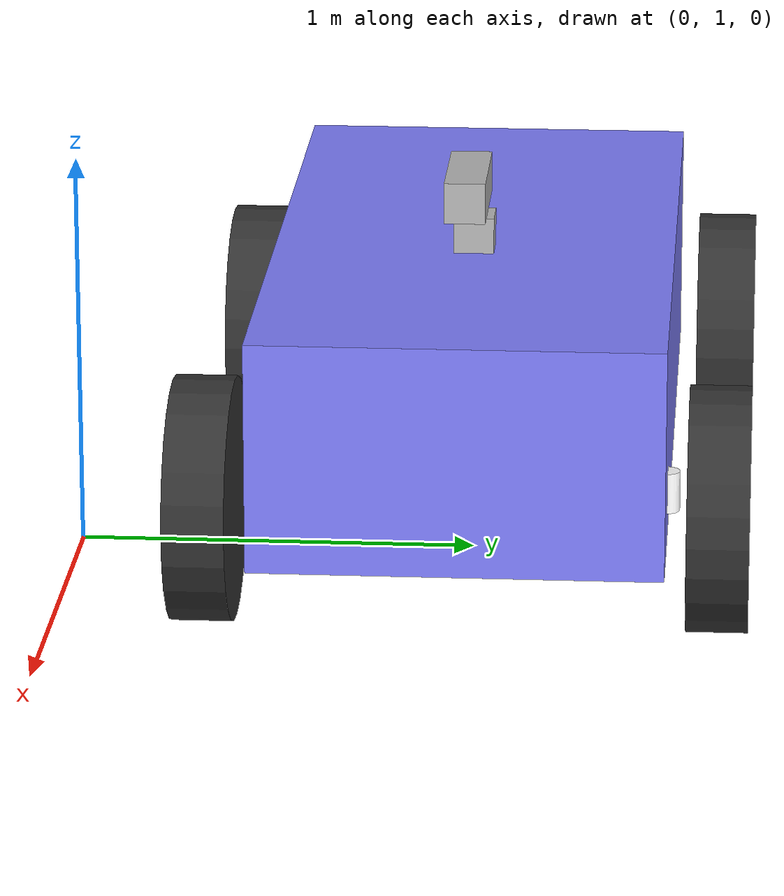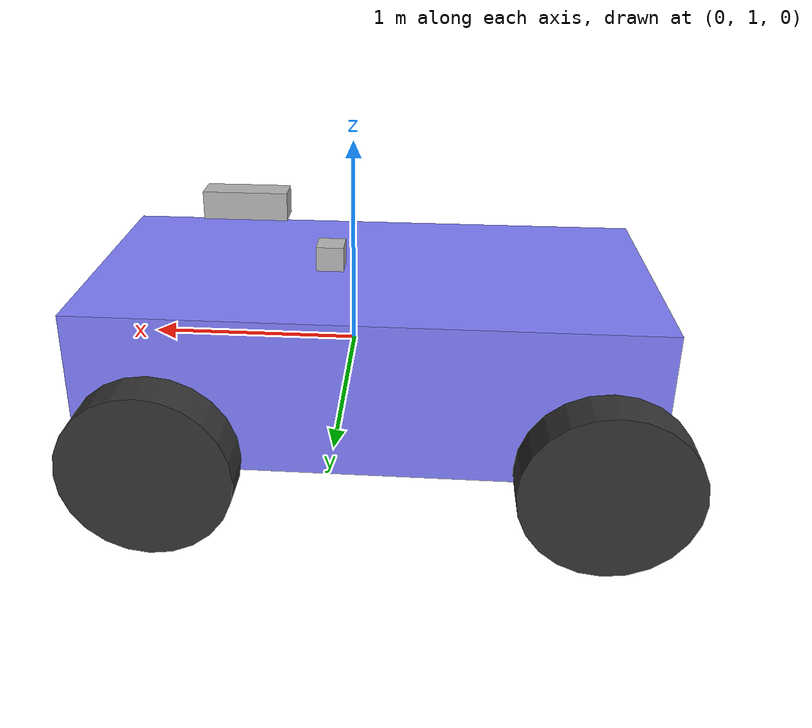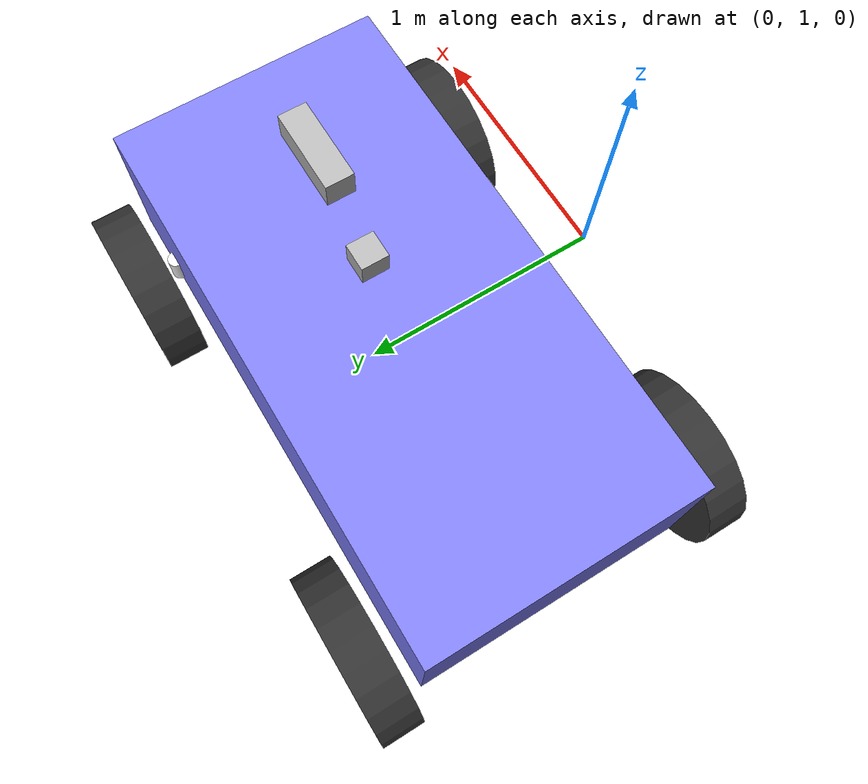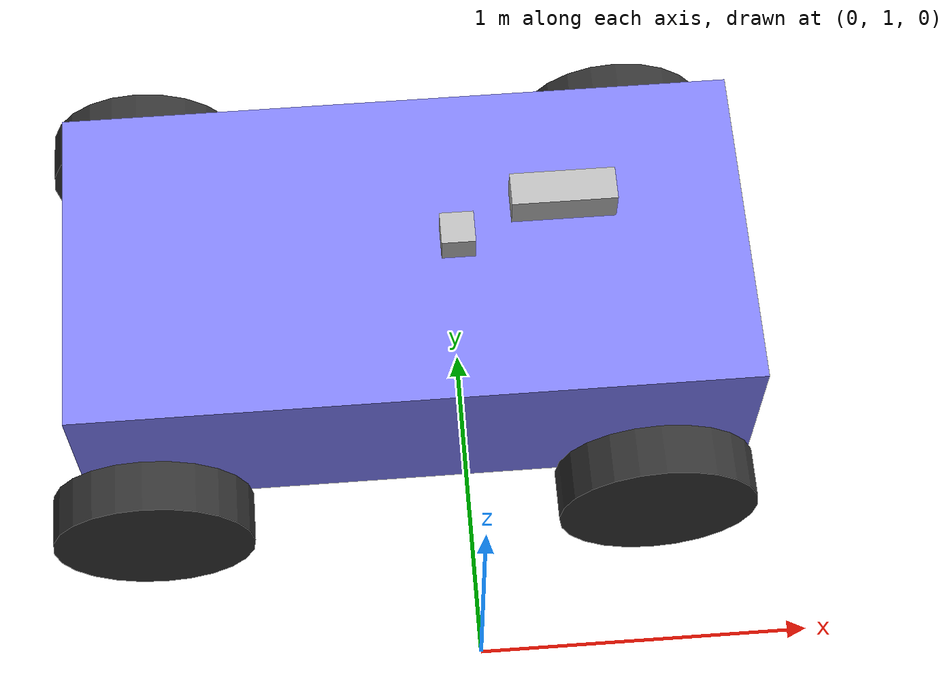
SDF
<?xml version="1.0"?>
<sdf version="1.10">
	<model name='racecarx'>
		<pose>0 2 0.33 0 0 0</pose>
		<static>false</static>
		<self_collide>false</self_collide>
		<plugin filename="libRoadGen.so" name="RoadGen"></plugin>
		<link name='chassis'>
			<pose>-0.15142700000000001 0 0.17499999999999999 0 0 0</pose>
			<inertial>
			<mass>1.14395</mass>
			<inertia>
				<ixx>0.126164</ixx>
				<ixy>0</ixy>
				<ixz>0</ixz>
				<iyy>0.41651899999999997</iyy>
				<iyz>0</iyz>
				<izz>0.481014</izz>
			</inertia>
			<pose>0 0 0 0 0 0</pose>
			</inertial>
			<visual name='visual'>
			<geometry>
				<box>
				<size>2.0114200000000002 1 0.56872599999999995</size>
				</box>
			</geometry>
			<material>
				<ambient>0.5 0.5 1 1</ambient>
				<diffuse>0.5 0.5 1 1</diffuse>
				<specular>0 0 1 1</specular>
			</material>
			</visual>
			<collision name='collision'>
			<geometry>
				<box>
				<size>2.0114200000000002 1 0.56872599999999995</size>
				</box>
			</geometry>
			<surface>
				<friction>
				<ode/>
				</friction>
				<bounce/>
				<contact/>
			</surface>
			</collision>
			<enable_wind>false</enable_wind>
		</link>
		<link name='front_left_wheel'>
			<pose>0.55428299994665509 0.6250290000000005 -0.025000000000000022 -1.5706999999999995 -9.145556648555931e-15 4.2666024538867574e-10</pose>
			<inertial>
			<mass>2</mass>
			<inertia>
				<ixx>0.14583299999999999</ixx>
				<ixy>0</ixy>
				<ixz>0</ixz>
				<iyy>0.14583299999999999</iyy>
				<iyz>0</iyz>
				<izz>0.125</izz>
			</inertia>
			<pose>0 0 0 0 0 0</pose>
			</inertial>
			<visual name='visual'>
			<geometry>
				<cylinder>
				<length>0.14999999999999999</length>
				<radius>0.29999999999999999</radius>
				</cylinder>
			</geometry>
			<material>
				<ambient>0.200000003 0.200000003 0.200000003 1</ambient>
				<diffuse>0.200000003 0.200000003 0.200000003 1</diffuse>
				<specular>0.200000003 0.200000003 0.200000003 1</specular>
			</material>
			</visual>
			<collision name='collision'>
			<geometry>
				<cylinder>
				<length>0.14999999999999999</length>
				<radius>0.29999999999999999</radius>
				</cylinder>
			</geometry>
			<surface>
				<friction>
				<ode>
					<mu>0.5</mu>
					<mu2>1</mu2>
					<fdir1>0 0 1</fdir1>
				</ode>
				<bullet>
					<friction>0.5</friction>
					<friction2>1</friction2>
					<rolling_friction>0.10000000000000001</rolling_friction>
				</bullet>
				</friction>
				<bounce/>
				<contact/>
			</surface>
			</collision>
			<enable_wind>false</enable_wind>
		</link>
		<link name='rear_left_wheel'>
			<pose>-0.95713800000000027 0.62502900000000006 -0.025000000000000022 -1.5706999999999995 -2.9522270427279027e-15 -2.8437852876896552e-19</pose>
			<inertial>
			<mass>2</mass>
			<inertia>
				<ixx>0.14583299999999999</ixx>
				<ixy>0</ixy>
				<ixz>0</ixz>
				<iyy>0.14583299999999999</iyy>
				<iyz>0</iyz>
				<izz>0.125</izz>
			</inertia>
			<pose>0 0 0 0 0 0</pose>
			</inertial>
			<visual name='visual'>
			<geometry>
				<cylinder>
				<length>0.14999999999999999</length>
				<radius>0.29999999999999999</radius>
				</cylinder>
			</geometry>
			<material>
				<ambient>0.200000003 0.200000003 0.200000003 1</ambient>
				<diffuse>0.200000003 0.200000003 0.200000003 1</diffuse>
				<specular>0.200000003 0.200000003 0.200000003 1</specular>
			</material>
			</visual>
			<collision name='collision'>
			<geometry>
				<cylinder>
				<length>0.14999999999999999</length>
				<radius>0.29999999999999999</radius>
				</cylinder>
			</geometry>
			<surface>
				<friction>
				<ode>
					<mu>0.5</mu>
					<mu2>1</mu2>
					<fdir1>0 0 1</fdir1>
				</ode>
				<bullet>
					<friction>0.5</friction>
					<friction2>1</friction2>
					<rolling_friction>0.5</rolling_friction>
				</bullet>
				</friction>
				<bounce/>
				<contact/>
			</surface>
			</collision>
			<enable_wind>false</enable_wind>
		</link>
		<link name='front_right_wheel'>
			<pose>0.55428200005334449 -0.62502900000000028 -0.024999999999999967 -1.5706999999999995 1.6772747307446438e-14 4.2665521801114974e-10</pose>
			<inertial>
			<mass>2</mass>
			<inertia>
				<ixx>0.14583299999999999</ixx>
				<ixy>0</ixy>
				<ixz>0</ixz>
				<iyy>0.14583299999999999</iyy>
				<iyz>0</iyz>
				<izz>0.125</izz>
			</inertia>
			<pose>0 0 0 0 0 0</pose>
			</inertial>
			<visual name='visual'>
			<geometry>
				<cylinder>
				<length>0.14999999999999999</length>
				<radius>0.29999999999999999</radius>
				</cylinder>
			</geometry>
			<material>
				<ambient>0.200000003 0.200000003 0.200000003 1</ambient>
				<diffuse>0.200000003 0.200000003 0.200000003 1</diffuse>
				<specular>0.200000003 0.200000003 0.200000003 1</specular>
			</material>
			</visual>
			<collision name='collision'>
			<geometry>
				<cylinder>
				<length>0.14999999999999999</length>
				<radius>0.29999999999999999</radius>
				</cylinder>
			</geometry>
			<surface>
				<friction>
				<ode>
					<mu>0.5</mu>
					<mu2>1</mu2>
					<fdir1>0 0 1</fdir1>
				</ode>
				<bullet>
					<friction>0.5</friction>
					<friction2>1</friction2>
					<rolling_friction>0.10000000000000001</rolling_friction>
				</bullet>
				</friction>
				<bounce/>
				<contact/>
			</surface>
			</collision>
			<enable_wind>false</enable_wind>
		</link>
		<link name='rear_right_wheel'>
			<pose>-0.95713800000000004 -0.62502899999999983 -0.025000000000000022 -1.5706999999999995 -4.6792353216849343e-15 -4.507357451652125e-19</pose>
			<inertial>
			<mass>2</mass>
			<inertia>
				<ixx>0.14583299999999999</ixx>
				<ixy>0</ixy>
				<ixz>0</ixz>
				<iyy>0.14583299999999999</iyy>
				<iyz>0</iyz>
				<izz>0.125</izz>
			</inertia>
			<pose>0 0 0 0 0 0</pose>
			</inertial>
			<visual name='visual'>
			<geometry>
				<cylinder>
				<length>0.14999999999999999</length>
				<radius>0.29999999999999999</radius>
				</cylinder>
			</geometry>
			<material>
				<ambient>0.200000003 0.200000003 0.200000003 1</ambient>
				<diffuse>0.200000003 0.200000003 0.200000003 1</diffuse>
				<specular>0.200000003 0.200000003 0.200000003 1</specular>
			</material>
			</visual>
			<collision name='collision'>
			<geometry>
				<cylinder>
				<length>0.14999999999999999</length>
				<radius>0.29999999999999999</radius>
				</cylinder>
			</geometry>
			<surface>
				<friction>
				<ode>
					<mu>0.5</mu>
					<mu2>1</mu2>
					<fdir1>0 0 1</fdir1>
				</ode>
				<bullet>
					<friction>0.5</friction>
					<friction2>1</friction2>
					<rolling_friction>0.5</rolling_friction>
				</bullet>
				</friction>
				<bounce/>
				<contact/>
			</surface>
			</collision>
			<enable_wind>false</enable_wind>
		</link>
		<link name='front_left_wheel_steering_link'>
			<pose>0.55428300000000008 0.5 0.019999999999999962 4.2777962009110771e-26 4.852013700537918e-26 4.2666024626963793e-10</pose>
			<inertial>
			<mass>0.5</mass>
			<inertia>
				<ixx>0.015299999999999999</ixx>
				<iyy>0.025000000000000001</iyy>
				<izz>0.015299999999999999</izz>
				<ixy>0</ixy>
				<ixz>0</ixz>
				<iyz>0</iyz>
			</inertia>
			<pose>0 0 0 0 0 0</pose>
			</inertial>
			<visual name='steering_link_visual'>
			<pose>0 0 0 0 0 0</pose>
			<geometry>
				<cylinder>
				<length>0.10000000000000001</length>
				<radius>0.029999999999999999</radius>
				</cylinder>
			</geometry>
			<material>
				<ambient>1 1 1 1</ambient>
				<diffuse>1 1 1 1</diffuse>
			</material>
			</visual>
			<enable_wind>false</enable_wind>
		</link>
		<link name='front_right_wheel_steering_link'>
			<pose>0.55428300000000008 -0.5 0.019999999999999962 -4.5858317481205403e-27 -5.4877439555714035e-26 4.2665521639548491e-10</pose>
			<inertial>
			<mass>0.5</mass>
			<inertia>
				<ixx>0.015299999999999999</ixx>
				<iyy>0.025000000000000001</iyy>
				<izz>0.015299999999999999</izz>
				<ixy>0</ixy>
				<ixz>0</ixz>
				<iyz>0</iyz>
			</inertia>
			<pose>0 0 0 0 0 0</pose>
			</inertial>
			<visual name='steering_link_visual'>
			<pose>0 0 0 0 0 0</pose>
			<geometry>
				<cylinder>
				<length>0.10000000000000001</length>
				<radius>0.029999999999999999</radius>
				</cylinder>
			</geometry>
			<material>
				<ambient>1 1 1 1</ambient>
				<diffuse>1 1 1 1</diffuse>
			</material>
			</visual>
			<enable_wind>false</enable_wind>
		</link>
		<joint name='front_left_wheel_steering_joint' type='revolute'>
			<child>front_left_wheel_steering_link</child>
			<parent>chassis</parent>
			<axis>
			<xyz>0 0 1</xyz>
			<limit>
				<lower>-0.59999999999999998</lower>
				<upper>0.59999999999999998</upper>
				<effort>25</effort>
				<velocity>1</velocity>
				<stiffness>100000000</stiffness>
				<dissipation>1</dissipation>
			</limit>
			<dynamics>
				<spring_reference>0</spring_reference>
				<spring_stiffness>0</spring_stiffness>
				<damping>0</damping>
				<friction>0</friction>
			</dynamics>
			</axis>
			<pose>0 0 0 0 0 0</pose>
		</joint>
		<joint name='front_right_wheel_steering_joint' type='revolute'>
			<parent>chassis</parent>
			<child>front_right_wheel_steering_link</child>
			<axis>
			<xyz>0 0 1</xyz>
			<limit>
				<lower>-0.59999999999999998</lower>
				<upper>0.59999999999999998</upper>
				<effort>25</effort>
				<velocity>1</velocity>
				<stiffness>100000000</stiffness>
				<dissipation>1</dissipation>
			</limit>
			<dynamics>
				<spring_reference>0</spring_reference>
				<spring_stiffness>0</spring_stiffness>
				<damping>0</damping>
				<friction>0</friction>
			</dynamics>
			</axis>
			<pose>0 0 0 0 0 0</pose>
		</joint>
		<joint name='front_left_wheel_joint' type='revolute'>
			<parent>front_left_wheel_steering_link</parent>
			<child>front_left_wheel</child>
			<axis>
			<xyz>0 0 1</xyz>
			<limit>
				<lower>-1.7976900000000001e+308</lower>
				<upper>1.7976900000000001e+308</upper>
				<effort>inf</effort>
				<velocity>inf</velocity>
				<stiffness>100000000</stiffness>
				<dissipation>1</dissipation>
			</limit>
			<dynamics>
				<spring_reference>0</spring_reference>
				<spring_stiffness>0</spring_stiffness>
				<damping>0</damping>
				<friction>0</friction>
			</dynamics>
			</axis>
			<pose>0 0 1.11022e-16 0 0 0</pose>
		</joint>
		<joint name='front_right_wheel_joint' type='revolute'>
			<parent>front_right_wheel_steering_link</parent>
			<child>front_right_wheel</child>
			<axis>
			<xyz>0 0 1</xyz>
			<limit>
				<lower>-1.7976900000000001e+308</lower>
				<upper>1.7976900000000001e+308</upper>
				<effort>inf</effort>
				<velocity>inf</velocity>
				<stiffness>100000000</stiffness>
				<dissipation>1</dissipation>
			</limit>
			<dynamics>
				<spring_reference>0</spring_reference>
				<spring_stiffness>0</spring_stiffness>
				<damping>0</damping>
				<friction>0</friction>
			</dynamics>
			</axis>
			<pose>-1.11022e-16 0 0 0 0 0</pose>
		</joint>
		<joint name='rear_left_wheel_joint' type='revolute'>
			<parent>chassis</parent>
			<child>rear_left_wheel</child>
			<axis>
			<xyz>0 0 1</xyz>
			<limit>
				<lower>-1.7976900000000001e+308</lower>
				<upper>1.7976900000000001e+308</upper>
				<effort>inf</effort>
				<velocity>inf</velocity>
				<stiffness>100000000</stiffness>
				<dissipation>1</dissipation>
			</limit>
			<dynamics>
				<spring_reference>0</spring_reference>
				<spring_stiffness>0</spring_stiffness>
				<damping>0</damping>
				<friction>0</friction>
			</dynamics>
			</axis>
			<pose>0 0 1.11022e-16 0 0 0</pose>
		</joint>
		<joint name='rear_right_wheel_joint' type='revolute'>
			<parent>chassis</parent>
			<child>rear_right_wheel</child>
			<axis>
			<xyz>0 0 1</xyz>
			<limit>
				<lower>-1.7976900000000001e+308</lower>
				<upper>1.7976900000000001e+308</upper>
				<effort>inf</effort>
				<velocity>inf</velocity>
				<stiffness>100000000</stiffness>
				<dissipation>1</dissipation>
			</limit>
			<dynamics>
				<spring_reference>0</spring_reference>
				<spring_stiffness>0</spring_stiffness>
				<damping>0</damping>
				<friction>0</friction>
			</dynamics>
			</axis>
			<pose>0 0 0 0 0 0</pose>
		</joint>
		<plugin name='gz::sim::systems::AckermannSteering' filename='gz-sim-ackermann-steering-system'>
			<topic>/cmd_vel</topic>
			<left_joint>front_left_wheel_joint</left_joint>
			<left_joint>rear_left_wheel_joint</left_joint>
			<right_joint>front_right_wheel_joint</right_joint>
			<right_joint>rear_right_wheel_joint</right_joint>
			<left_steering_joint>front_left_wheel_steering_joint</left_steering_joint>
			<right_steering_joint>front_right_wheel_steering_joint</right_steering_joint>
			<steer_p_gain>10.0</steer_p_gain>
			<kingpin_width>1.0</kingpin_width>
			<steering_limit>0.5</steering_limit>
			<wheel_base>1.0</wheel_base>
			<wheel_separation>1.25</wheel_separation>
		</plugin>

		<link name="camera_link">
			<pose>0.3 0 0.7 0 0 0</pose>
			<inertial>
			<mass>0.1</mass>
			<inertia>
				<ixx>0.000166667</ixx>
				<iyy>0.000166667</iyy>
				<izz>0.000166667</izz>
			</inertia>
			</inertial>
			<collision name="collision">
				<geometry>
					<box>
					<size>0.3 0.1 0.1</size>
					</box>
				</geometry>
			</collision>
			<visual name="visual">
				<geometry>
					<box>
					<size>0.3 0.1 0.1</size>
					</box>
				</geometry>
			</visual>
			<sensor name="camera" type="camera">
			<camera>
				<horizontal_fov>1.047</horizontal_fov>
				<image>
				<width>320</width>
				<height>240</height>
				</image>
				<clip>
				<near>0.1</near>
				<far>100</far>
				</clip>
			</camera>
			<always_on>1</always_on>
			<update_rate>30</update_rate>
			<visualize>true</visualize>
			<topic>camera</topic>
			</sensor>
		</link>

		<joint name="camera_joint" type="fixed">
			<parent>chassis</parent>
			<child>camera_link</child>
			<pose>0 0 0 0 0 0</pose>
		</joint>

		<link name="lidar_link">
			<pose>0 0 0.5 0 0 0</pose>
			<inertial>
				<mass>0.1</mass>
				<inertia>
				<ixx>0.000166667</ixx>
				<iyy>0.000166667</iyy>
				<izz>0.000166667</izz>
				</inertia>
			</inertial>
			<collision name="collision">
				<geometry>
				<box>
					<size>0.1 0.1 0.1</size>
				</box>
				</geometry>
			</collision>
			<visual name="visual">
				<geometry>
				<box>
					<size>0.1 0.1 0.1</size>
				</box>
				</geometry>
			</visual>

			<sensor name='gpu_lidar' type='gpu_lidar'>
				<topic>lidar</topic>
				<update_rate>10</update_rate>
				<lidar>
				<scan>
					<horizontal>
					<samples>640</samples>
					<resolution>1</resolution>
					<min_angle>-1.4</min_angle>
					<max_angle>1.4</max_angle>
					</horizontal>
					<vertical>
					<samples>16</samples>
					<resolution>1</resolution>
					<min_angle>-0.3</min_angle>
					<max_angle>0.3</max_angle>
					</vertical>
				</scan>
				<range>
					<min>0.08</min>
					<max>10.0</max>
					<resolution>0.01</resolution>
				</range>
				</lidar>
				<always_on>1</always_on>
				<visualize>true</visualize>
			</sensor>
      	</link>

		<joint name="lidar_joint" type="fixed">
			<parent>chassis</parent>
			<child>lidar_link</child>
			<pose>0 0 0 0 0 0</pose>
		</joint>
	</model>
</sdf>
